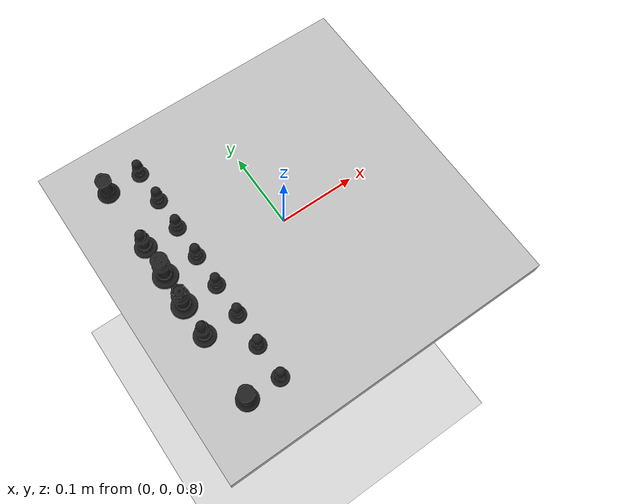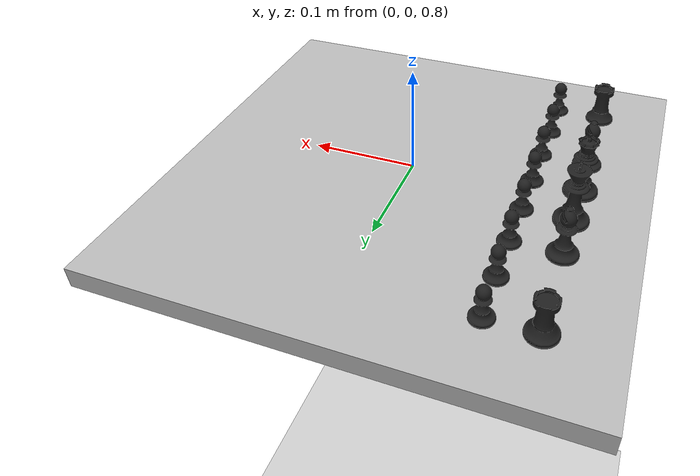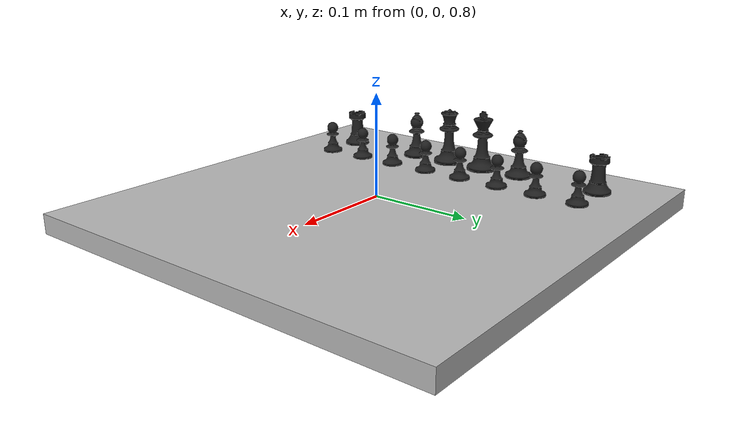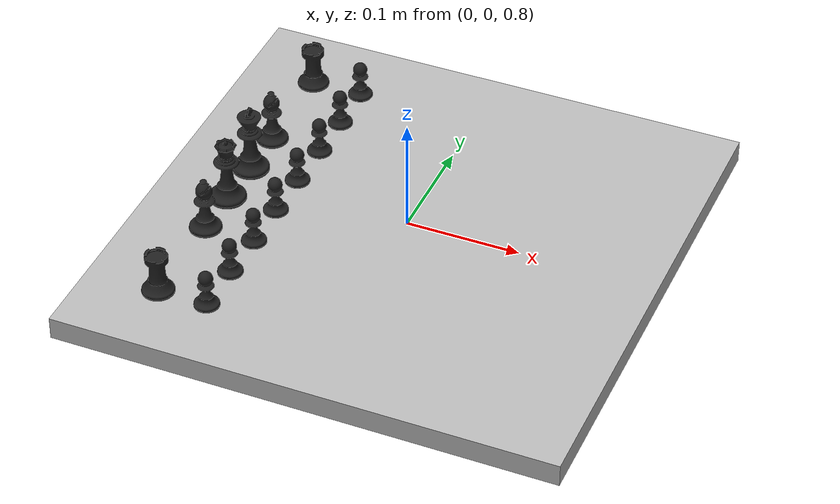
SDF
<sdf version="1.7">
 <world name="default">
  <model name="ground_plane">
   <static>1</static>
   <link name="link">
    <collision name="collision">
     <geometry><plane><normal>0 0 1</normal><size>100 100</size></plane></geometry>
     <surface>
      <contact><collide_bitmask>65535</collide_bitmask></contact>
      <friction><ode><mu>100</mu><mu2>50</mu2></ode></friction>
     </surface>
    </collision>
    <visual name="visual">
     <cast_shadows>0</cast_shadows>
     <geometry><plane><normal>0 0 1</normal><size>100 100</size></plane></geometry>
     <material>
      <script><uri>file://media/materials/scripts/gazebo.material</uri><name>Gazebo/Grey</name></script>
     </material>
    </visual>
   </link>
  </model>
  <model name="chess_board">
   <link name="link">
    <inertial>
     <mass>0.5</mass>
     <inertia>
      <ixx>0.166667</ixx>
      <ixy>0</ixy>
      <ixz>0</ixz>
      <iyy>0.166667</iyy>
      <iyz>0</iyz>
      <izz>0.166667</izz>
     </inertia>
    </inertial>
    <visual name="visual">
     <geometry><box><size>0.44 0.44 0.02</size></box></geometry>
     <material>
      <script>
       <name>ChessBoardMaterial</name>
       <uri>model://chess_board/materials/scripts</uri>
       <uri>model://chess_board/materials/textures</uri>
      </script>
     </material>
    </visual>
    <collision name="collision">
     <geometry><box><size>0.44 0.44 0.02</size></box></geometry>
     <surface>
      <friction>
       <ode><mu>1</mu><mu2>1</mu2><fdir1>0 0 0</fdir1><slip1>0</slip1><slip2>0</slip2></ode>
       <torsional>
        <coefficient>1</coefficient>
        <patch_radius>0</patch_radius>
        <surface_radius>0</surface_radius>
        <use_patch_radius>1</use_patch_radius>
        <ode><slip>0</slip></ode>
       </torsional>
      </friction>
      <bounce><restitution_coefficient>0</restitution_coefficient><threshold>1e+06</threshold></bounce>
      <contact>
       <collide_without_contact>0</collide_without_contact>
       <collide_without_contact_bitmask>1</collide_without_contact_bitmask>
       <collide_bitmask>1</collide_bitmask>
       <ode>
        <soft_cfm>0</soft_cfm>
        <soft_erp>0.2</soft_erp>
        <kp>1e+13</kp>
        <kd>1</kd>
        <max_vel>0.01</max_vel>
        <min_depth>0</min_depth>
       </ode>
       <bullet>
        <split_impulse>1</split_impulse>
        <split_impulse_penetration_threshold>-0.01</split_impulse_penetration_threshold>
        <soft_cfm>0</soft_cfm>
        <soft_erp>0.2</soft_erp>
        <kp>1e+13</kp>
        <kd>1</kd>
       </bullet>
      </contact>
     </surface>
    </collision>
   </link>
   <static>0</static>
   <pose>-0.000743 0.000917 0.785005 0 2.4e-05 -3e-05</pose>
  </model>
  <model name="pawn_black">
   <link name="link">
    <inertial>
     <mass>0.1</mass>
     <inertia>
      <ixx>0.166667</ixx>
      <ixy>0</ixy>
      <ixz>0</ixz>
      <iyy>0.166667</iyy>
      <iyz>0</iyz>
      <izz>0.166667</izz>
     </inertia>
    </inertial>
    <visual name="visual">
     <geometry><mesh><uri>model://pawn_black/pawn.stl</uri><scale>0.001 0.001 0.001</scale></mesh></geometry>
     <material>
      <lighting>1</lighting>
      <script><uri>file://media/materials/scripts/gazebo.material</uri><name>Gazebo/Black</name></script>
      <shader type="pixel"><normal_map>__default__</normal_map></shader>
      <ambient>0.3 0.3 0.3 1</ambient>
      <diffuse>0.3 0.3 0.3 1</diffuse>
      <specular>0.1 0.1 0.1 1</specular>
      <emissive>0 0 0 1</emissive>
     </material>
    </visual>
    <collision name="collision">
     <geometry><mesh><uri>model://pawn_black/pawn.stl</uri><scale>0.001 0.001 0.001</scale></mesh></geometry>
     <surface>
      <friction>
       <ode><mu>1</mu><mu2>1</mu2><fdir1>0 0 0</fdir1><slip1>0</slip1><slip2>0</slip2></ode>
       <torsional>
        <coefficient>1</coefficient>
        <patch_radius>0</patch_radius>
        <surface_radius>0</surface_radius>
        <use_patch_radius>1</use_patch_radius>
        <ode><slip>0</slip></ode>
       </torsional>
      </friction>
      <bounce><restitution_coefficient>0</restitution_coefficient><threshold>1e+06</threshold></bounce>
      <contact>
       <collide_without_contact>0</collide_without_contact>
       <collide_without_contact_bitmask>1</collide_without_contact_bitmask>
       <collide_bitmask>1</collide_bitmask>
       <ode>
        <soft_cfm>0</soft_cfm>
        <soft_erp>0.2</soft_erp>
        <kp>1e+13</kp>
        <kd>1</kd>
        <max_vel>0.01</max_vel>
        <min_depth>0</min_depth>
       </ode>
       <bullet>
        <split_impulse>1</split_impulse>
        <split_impulse_penetration_threshold>-0.01</split_impulse_penetration_threshold>
        <soft_cfm>0</soft_cfm>
        <soft_erp>0.2</soft_erp>
        <kp>1e+13</kp>
        <kd>1</kd>
       </bullet>
      </contact>
     </surface>
    </collision>
   </link>
   <static>0</static>
   <pose>-0.111188 -0.153614 0.795213 0.000217 0.0001 0.001653</pose>
  </model>
  <model name="pawn_black_0">
   <link name="link">
    <inertial>
     <mass>0.1</mass>
     <inertia>
      <ixx>0.166667</ixx>
      <ixy>0</ixy>
      <ixz>0</ixz>
      <iyy>0.166667</iyy>
      <iyz>0</iyz>
      <izz>0.166667</izz>
     </inertia>
    </inertial>
    <visual name="visual">
     <geometry><mesh><uri>model://pawn_black/pawn.stl</uri><scale>0.001 0.001 0.001</scale></mesh></geometry>
     <material>
      <lighting>1</lighting>
      <script><uri>file://media/materials/scripts/gazebo.material</uri><name>Gazebo/Black</name></script>
      <shader type="pixel"><normal_map>__default__</normal_map></shader>
      <ambient>0.3 0.3 0.3 1</ambient>
      <diffuse>0.3 0.3 0.3 1</diffuse>
      <specular>0.1 0.1 0.1 1</specular>
      <emissive>0 0 0 1</emissive>
     </material>
    </visual>
    <collision name="collision">
     <geometry><mesh><uri>model://pawn_black/pawn.stl</uri><scale>0.001 0.001 0.001</scale></mesh></geometry>
     <surface>
      <friction>
       <ode><mu>1</mu><mu2>1</mu2><fdir1>0 0 0</fdir1><slip1>0</slip1><slip2>0</slip2></ode>
       <torsional>
        <coefficient>1</coefficient>
        <patch_radius>0</patch_radius>
        <surface_radius>0</surface_radius>
        <use_patch_radius>1</use_patch_radius>
        <ode><slip>0</slip></ode>
       </torsional>
      </friction>
      <bounce><restitution_coefficient>0</restitution_coefficient><threshold>1e+06</threshold></bounce>
      <contact>
       <collide_without_contact>0</collide_without_contact>
       <collide_without_contact_bitmask>1</collide_without_contact_bitmask>
       <collide_bitmask>1</collide_bitmask>
       <ode>
        <soft_cfm>0</soft_cfm>
        <soft_erp>0.2</soft_erp>
        <kp>1e+13</kp>
        <kd>1</kd>
        <max_vel>0.01</max_vel>
        <min_depth>0</min_depth>
       </ode>
       <bullet>
        <split_impulse>1</split_impulse>
        <split_impulse_penetration_threshold>-0.01</split_impulse_penetration_threshold>
        <soft_cfm>0</soft_cfm>
        <soft_erp>0.2</soft_erp>
        <kp>1e+13</kp>
        <kd>1</kd>
       </bullet>
      </contact>
     </surface>
    </collision>
   </link>
   <static>0</static>
   <pose>-0.111529 -0.108762 0.795217 0.000481 0.000399 0.001416</pose>
  </model>
  <model name="pawn_black_1">
   <link name="link">
    <inertial>
     <mass>0.1</mass>
     <inertia>
      <ixx>0.166667</ixx>
      <ixy>0</ixy>
      <ixz>0</ixz>
      <iyy>0.166667</iyy>
      <iyz>0</iyz>
      <izz>0.166667</izz>
     </inertia>
    </inertial>
    <visual name="visual">
     <geometry><mesh><uri>model://pawn_black/pawn.stl</uri><scale>0.001 0.001 0.001</scale></mesh></geometry>
     <material>
      <lighting>1</lighting>
      <script><uri>file://media/materials/scripts/gazebo.material</uri><name>Gazebo/Black</name></script>
      <shader type="pixel"><normal_map>__default__</normal_map></shader>
      <ambient>0.3 0.3 0.3 1</ambient>
      <diffuse>0.3 0.3 0.3 1</diffuse>
      <specular>0.1 0.1 0.1 1</specular>
      <emissive>0 0 0 1</emissive>
     </material>
    </visual>
    <collision name="collision">
     <geometry><mesh><uri>model://pawn_black/pawn.stl</uri><scale>0.001 0.001 0.001</scale></mesh></geometry>
     <surface>
      <friction>
       <ode><mu>1</mu><mu2>1</mu2><fdir1>0 0 0</fdir1><slip1>0</slip1><slip2>0</slip2></ode>
       <torsional>
        <coefficient>1</coefficient>
        <patch_radius>0</patch_radius>
        <surface_radius>0</surface_radius>
        <use_patch_radius>1</use_patch_radius>
        <ode><slip>0</slip></ode>
       </torsional>
      </friction>
      <bounce><restitution_coefficient>0</restitution_coefficient><threshold>1e+06</threshold></bounce>
      <contact>
       <collide_without_contact>0</collide_without_contact>
       <collide_without_contact_bitmask>1</collide_without_contact_bitmask>
       <collide_bitmask>1</collide_bitmask>
       <ode>
        <soft_cfm>0</soft_cfm>
        <soft_erp>0.2</soft_erp>
        <kp>1e+13</kp>
        <kd>1</kd>
        <max_vel>0.01</max_vel>
        <min_depth>0</min_depth>
       </ode>
       <bullet>
        <split_impulse>1</split_impulse>
        <split_impulse_penetration_threshold>-0.01</split_impulse_penetration_threshold>
        <soft_cfm>0</soft_cfm>
        <soft_erp>0.2</soft_erp>
        <kp>1e+13</kp>
        <kd>1</kd>
       </bullet>
      </contact>
     </surface>
    </collision>
   </link>
   <static>0</static>
   <pose>-0.11055 -0.065455 0.795218 0.000372 -0.000639 0.000222</pose>
  </model>
  <model name="pawn_black_2">
   <link name="link">
    <inertial>
     <mass>0.1</mass>
     <inertia>
      <ixx>0.166667</ixx>
      <ixy>0</ixy>
      <ixz>0</ixz>
      <iyy>0.166667</iyy>
      <iyz>0</iyz>
      <izz>0.166667</izz>
     </inertia>
    </inertial>
    <visual name="visual">
     <geometry><mesh><uri>model://pawn_black/pawn.stl</uri><scale>0.001 0.001 0.001</scale></mesh></geometry>
     <material>
      <lighting>1</lighting>
      <script><uri>file://media/materials/scripts/gazebo.material</uri><name>Gazebo/Black</name></script>
      <shader type="pixel"><normal_map>__default__</normal_map></shader>
      <ambient>0.3 0.3 0.3 1</ambient>
      <diffuse>0.3 0.3 0.3 1</diffuse>
      <specular>0.1 0.1 0.1 1</specular>
      <emissive>0 0 0 1</emissive>
     </material>
    </visual>
    <collision name="collision">
     <geometry><mesh><uri>model://pawn_black/pawn.stl</uri><scale>0.001 0.001 0.001</scale></mesh></geometry>
     <surface>
      <friction>
       <ode><mu>1</mu><mu2>1</mu2><fdir1>0 0 0</fdir1><slip1>0</slip1><slip2>0</slip2></ode>
       <torsional>
        <coefficient>1</coefficient>
        <patch_radius>0</patch_radius>
        <surface_radius>0</surface_radius>
        <use_patch_radius>1</use_patch_radius>
        <ode><slip>0</slip></ode>
       </torsional>
      </friction>
      <bounce><restitution_coefficient>0</restitution_coefficient><threshold>1e+06</threshold></bounce>
      <contact>
       <collide_without_contact>0</collide_without_contact>
       <collide_without_contact_bitmask>1</collide_without_contact_bitmask>
       <collide_bitmask>1</collide_bitmask>
       <ode>
        <soft_cfm>0</soft_cfm>
        <soft_erp>0.2</soft_erp>
        <kp>1e+13</kp>
        <kd>1</kd>
        <max_vel>0.01</max_vel>
        <min_depth>0</min_depth>
       </ode>
       <bullet>
        <split_impulse>1</split_impulse>
        <split_impulse_penetration_threshold>-0.01</split_impulse_penetration_threshold>
        <soft_cfm>0</soft_cfm>
        <soft_erp>0.2</soft_erp>
        <kp>1e+13</kp>
        <kd>1</kd>
       </bullet>
      </contact>
     </surface>
    </collision>
   </link>
   <static>0</static>
   <pose>-0.111116 -0.021215 0.795209 0.000124 -9.6e-05 5.8e-05</pose>
  </model>
  <model name="pawn_black_3">
   <link name="link">
    <inertial>
     <mass>0.1</mass>
     <inertia>
      <ixx>0.166667</ixx>
      <ixy>0</ixy>
      <ixz>0</ixz>
      <iyy>0.166667</iyy>
      <iyz>0</iyz>
      <izz>0.166667</izz>
     </inertia>
    </inertial>
    <visual name="visual">
     <geometry><mesh><uri>model://pawn_black/pawn.stl</uri><scale>0.001 0.001 0.001</scale></mesh></geometry>
     <material>
      <lighting>1</lighting>
      <script><uri>file://media/materials/scripts/gazebo.material</uri><name>Gazebo/Black</name></script>
      <shader type="pixel"><normal_map>__default__</normal_map></shader>
      <ambient>0.3 0.3 0.3 1</ambient>
      <diffuse>0.3 0.3 0.3 1</diffuse>
      <specular>0.1 0.1 0.1 1</specular>
      <emissive>0 0 0 1</emissive>
     </material>
    </visual>
    <collision name="collision">
     <geometry><mesh><uri>model://pawn_black/pawn.stl</uri><scale>0.001 0.001 0.001</scale></mesh></geometry>
     <surface>
      <friction>
       <ode><mu>1</mu><mu2>1</mu2><fdir1>0 0 0</fdir1><slip1>0</slip1><slip2>0</slip2></ode>
       <torsional>
        <coefficient>1</coefficient>
        <patch_radius>0</patch_radius>
        <surface_radius>0</surface_radius>
        <use_patch_radius>1</use_patch_radius>
        <ode><slip>0</slip></ode>
       </torsional>
      </friction>
      <bounce><restitution_coefficient>0</restitution_coefficient><threshold>1e+06</threshold></bounce>
      <contact>
       <collide_without_contact>0</collide_without_contact>
       <collide_without_contact_bitmask>1</collide_without_contact_bitmask>
       <collide_bitmask>1</collide_bitmask>
       <ode>
        <soft_cfm>0</soft_cfm>
        <soft_erp>0.2</soft_erp>
        <kp>1e+13</kp>
        <kd>1</kd>
        <max_vel>0.01</max_vel>
        <min_depth>0</min_depth>
       </ode>
       <bullet>
        <split_impulse>1</split_impulse>
        <split_impulse_penetration_threshold>-0.01</split_impulse_penetration_threshold>
        <soft_cfm>0</soft_cfm>
        <soft_erp>0.2</soft_erp>
        <kp>1e+13</kp>
        <kd>1</kd>
       </bullet>
      </contact>
     </surface>
    </collision>
   </link>
   <static>0</static>
   <pose>-0.111094 0.022614 0.795213 0.000222 -7.5e-05 4.2e-05</pose>
  </model>
  <model name="pawn_black_4">
   <link name="link">
    <inertial>
     <mass>0.1</mass>
     <inertia>
      <ixx>0.166667</ixx>
      <ixy>0</ixy>
      <ixz>0</ixz>
      <iyy>0.166667</iyy>
      <iyz>0</iyz>
      <izz>0.166667</izz>
     </inertia>
    </inertial>
    <visual name="visual">
     <geometry><mesh><uri>model://pawn_black/pawn.stl</uri><scale>0.001 0.001 0.001</scale></mesh></geometry>
     <material>
      <lighting>1</lighting>
      <script><uri>file://media/materials/scripts/gazebo.material</uri><name>Gazebo/Black</name></script>
      <shader type="pixel"><normal_map>__default__</normal_map></shader>
      <ambient>0.3 0.3 0.3 1</ambient>
      <diffuse>0.3 0.3 0.3 1</diffuse>
      <specular>0.1 0.1 0.1 1</specular>
      <emissive>0 0 0 1</emissive>
     </material>
    </visual>
    <collision name="collision">
     <geometry><mesh><uri>model://pawn_black/pawn.stl</uri><scale>0.001 0.001 0.001</scale></mesh></geometry>
     <surface>
      <friction>
       <ode><mu>1</mu><mu2>1</mu2><fdir1>0 0 0</fdir1><slip1>0</slip1><slip2>0</slip2></ode>
       <torsional>
        <coefficient>1</coefficient>
        <patch_radius>0</patch_radius>
        <surface_radius>0</surface_radius>
        <use_patch_radius>1</use_patch_radius>
        <ode><slip>0</slip></ode>
       </torsional>
      </friction>
      <bounce><restitution_coefficient>0</restitution_coefficient><threshold>1e+06</threshold></bounce>
      <contact>
       <collide_without_contact>0</collide_without_contact>
       <collide_without_contact_bitmask>1</collide_without_contact_bitmask>
       <collide_bitmask>1</collide_bitmask>
       <ode>
        <soft_cfm>0</soft_cfm>
        <soft_erp>0.2</soft_erp>
        <kp>1e+13</kp>
        <kd>1</kd>
        <max_vel>0.01</max_vel>
        <min_depth>0</min_depth>
       </ode>
       <bullet>
        <split_impulse>1</split_impulse>
        <split_impulse_penetration_threshold>-0.01</split_impulse_penetration_threshold>
        <soft_cfm>0</soft_cfm>
        <soft_erp>0.2</soft_erp>
        <kp>1e+13</kp>
        <kd>1</kd>
       </bullet>
      </contact>
     </surface>
    </collision>
   </link>
   <static>0</static>
   <pose>-0.110611 0.067324 0.795213 -0.000183 -0.000187 -0.000241</pose>
  </model>
  <model name="pawn_black_5">
   <link name="link">
    <inertial>
     <mass>0.1</mass>
     <inertia>
      <ixx>0.166667</ixx>
      <ixy>0</ixy>
      <ixz>0</ixz>
      <iyy>0.166667</iyy>
      <iyz>0</iyz>
      <izz>0.166667</izz>
     </inertia>
    </inertial>
    <visual name="visual">
     <geometry><mesh><uri>model://pawn_black/pawn.stl</uri><scale>0.001 0.001 0.001</scale></mesh></geometry>
     <material>
      <lighting>1</lighting>
      <script><uri>file://media/materials/scripts/gazebo.material</uri><name>Gazebo/Black</name></script>
      <shader type="pixel"><normal_map>__default__</normal_map></shader>
      <ambient>0.3 0.3 0.3 1</ambient>
      <diffuse>0.3 0.3 0.3 1</diffuse>
      <specular>0.1 0.1 0.1 1</specular>
      <emissive>0 0 0 1</emissive>
     </material>
    </visual>
    <collision name="collision">
     <geometry><mesh><uri>model://pawn_black/pawn.stl</uri><scale>0.001 0.001 0.001</scale></mesh></geometry>
     <surface>
      <friction>
       <ode><mu>1</mu><mu2>1</mu2><fdir1>0 0 0</fdir1><slip1>0</slip1><slip2>0</slip2></ode>
       <torsional>
        <coefficient>1</coefficient>
        <patch_radius>0</patch_radius>
        <surface_radius>0</surface_radius>
        <use_patch_radius>1</use_patch_radius>
        <ode><slip>0</slip></ode>
       </torsional>
      </friction>
      <bounce><restitution_coefficient>0</restitution_coefficient><threshold>1e+06</threshold></bounce>
      <contact>
       <collide_without_contact>0</collide_without_contact>
       <collide_without_contact_bitmask>1</collide_without_contact_bitmask>
       <collide_bitmask>1</collide_bitmask>
       <ode>
        <soft_cfm>0</soft_cfm>
        <soft_erp>0.2</soft_erp>
        <kp>1e+13</kp>
        <kd>1</kd>
        <max_vel>0.01</max_vel>
        <min_depth>0</min_depth>
       </ode>
       <bullet>
        <split_impulse>1</split_impulse>
        <split_impulse_penetration_threshold>-0.01</split_impulse_penetration_threshold>
        <soft_cfm>0</soft_cfm>
        <soft_erp>0.2</soft_erp>
        <kp>1e+13</kp>
        <kd>1</kd>
       </bullet>
      </contact>
     </surface>
    </collision>
   </link>
   <static>0</static>
   <pose>-0.110617 0.111126 0.795209 -0.000274 -3.3e-05 -0.000156</pose>
  </model>
  <model name="pawn_black_6">
   <link name="link">
    <inertial>
     <mass>0.1</mass>
     <inertia>
      <ixx>0.166667</ixx>
      <ixy>0</ixy>
      <ixz>0</ixz>
      <iyy>0.166667</iyy>
      <iyz>0</iyz>
      <izz>0.166667</izz>
     </inertia>
    </inertial>
    <visual name="visual">
     <geometry><mesh><uri>model://pawn_black/pawn.stl</uri><scale>0.001 0.001 0.001</scale></mesh></geometry>
     <material>
      <lighting>1</lighting>
      <script><uri>file://media/materials/scripts/gazebo.material</uri><name>Gazebo/Black</name></script>
      <shader type="pixel"><normal_map>__default__</normal_map></shader>
      <ambient>0.3 0.3 0.3 1</ambient>
      <diffuse>0.3 0.3 0.3 1</diffuse>
      <specular>0.1 0.1 0.1 1</specular>
      <emissive>0 0 0 1</emissive>
     </material>
    </visual>
    <collision name="collision">
     <geometry><mesh><uri>model://pawn_black/pawn.stl</uri><scale>0.001 0.001 0.001</scale></mesh></geometry>
     <surface>
      <friction>
       <ode><mu>1</mu><mu2>1</mu2><fdir1>0 0 0</fdir1><slip1>0</slip1><slip2>0</slip2></ode>
       <torsional>
        <coefficient>1</coefficient>
        <patch_radius>0</patch_radius>
        <surface_radius>0</surface_radius>
        <use_patch_radius>1</use_patch_radius>
        <ode><slip>0</slip></ode>
       </torsional>
      </friction>
      <bounce><restitution_coefficient>0</restitution_coefficient><threshold>1e+06</threshold></bounce>
      <contact>
       <collide_without_contact>0</collide_without_contact>
       <collide_without_contact_bitmask>1</collide_without_contact_bitmask>
       <collide_bitmask>1</collide_bitmask>
       <ode>
        <soft_cfm>0</soft_cfm>
        <soft_erp>0.2</soft_erp>
        <kp>1e+13</kp>
        <kd>1</kd>
        <max_vel>0.01</max_vel>
        <min_depth>0</min_depth>
       </ode>
       <bullet>
        <split_impulse>1</split_impulse>
        <split_impulse_penetration_threshold>-0.01</split_impulse_penetration_threshold>
        <soft_cfm>0</soft_cfm>
        <soft_erp>0.2</soft_erp>
        <kp>1e+13</kp>
        <kd>1</kd>
       </bullet>
      </contact>
     </surface>
    </collision>
   </link>
   <static>0</static>
   <pose>-0.111055 0.15584 0.795216 -0.000552 0.000186 -0.000349</pose>
  </model>
  <model name="rook_black">
   <link name="link">
    <inertial>
     <mass>0.1</mass>
     <inertia>
      <ixx>0.166667</ixx>
      <ixy>0</ixy>
      <ixz>0</ixz>
      <iyy>0.166667</iyy>
      <iyz>0</iyz>
      <izz>0.166667</izz>
     </inertia>
    </inertial>
    <visual name="visual">
     <geometry><mesh><uri>model://rook_black/rook.stl</uri><scale>0.001 0.001 0.001</scale></mesh></geometry>
     <material>
      <lighting>1</lighting>
      <script><uri>file://media/materials/scripts/gazebo.material</uri><name>Gazebo/Black</name></script>
      <shader type="pixel"><normal_map>__default__</normal_map></shader>
      <ambient>0.3 0.3 0.3 1</ambient>
      <diffuse>0.3 0.3 0.3 1</diffuse>
      <specular>0.1 0.1 0.1 1</specular>
      <emissive>0 0 0 1</emissive>
     </material>
    </visual>
    <collision name="collision">
     <geometry><mesh><uri>model://rook_black/rook.stl</uri><scale>0.001 0.001 0.001</scale></mesh></geometry>
     <surface>
      <friction>
       <ode><mu>1</mu><mu2>1</mu2><fdir1>0 0 0</fdir1><slip1>0</slip1><slip2>0</slip2></ode>
       <torsional>
        <coefficient>1</coefficient>
        <patch_radius>0</patch_radius>
        <surface_radius>0</surface_radius>
        <use_patch_radius>1</use_patch_radius>
        <ode><slip>0</slip></ode>
       </torsional>
      </friction>
      <bounce><restitution_coefficient>0</restitution_coefficient><threshold>1e+06</threshold></bounce>
      <contact>
       <collide_without_contact>0</collide_without_contact>
       <collide_without_contact_bitmask>1</collide_without_contact_bitmask>
       <collide_bitmask>1</collide_bitmask>
       <ode>
        <soft_cfm>0</soft_cfm>
        <soft_erp>0.2</soft_erp>
        <kp>1e+13</kp>
        <kd>1</kd>
        <max_vel>0.01</max_vel>
        <min_depth>0</min_depth>
       </ode>
       <bullet>
        <split_impulse>1</split_impulse>
        <split_impulse_penetration_threshold>-0.01</split_impulse_penetration_threshold>
        <soft_cfm>0</soft_cfm>
        <soft_erp>0.2</soft_erp>
        <kp>1e+13</kp>
        <kd>1</kd>
       </bullet>
      </contact>
     </surface>
    </collision>
   </link>
   <static>0</static>
   <pose>-0.155325 -0.15305 0.795165 5.4e-05 -0.000142 -0.000157</pose>
  </model>
  <model name="rook_black_0">
   <link name="link">
    <inertial>
     <mass>0.1</mass>
     <inertia>
      <ixx>0.166667</ixx>
      <ixy>0</ixy>
      <ixz>0</ixz>
      <iyy>0.166667</iyy>
      <iyz>0</iyz>
      <izz>0.166667</izz>
     </inertia>
    </inertial>
    <visual name="visual">
     <geometry><mesh><uri>model://rook_black/rook.stl</uri><scale>0.001 0.001 0.001</scale></mesh></geometry>
     <material>
      <lighting>1</lighting>
      <script><uri>file://media/materials/scripts/gazebo.material</uri><name>Gazebo/Black</name></script>
      <shader type="pixel"><normal_map>__default__</normal_map></shader>
      <ambient>0.3 0.3 0.3 1</ambient>
      <diffuse>0.3 0.3 0.3 1</diffuse>
      <specular>0.1 0.1 0.1 1</specular>
      <emissive>0 0 0 1</emissive>
     </material>
    </visual>
    <collision name="collision">
     <geometry><mesh><uri>model://rook_black/rook.stl</uri><scale>0.001 0.001 0.001</scale></mesh></geometry>
     <surface>
      <friction>
       <ode><mu>1</mu><mu2>1</mu2><fdir1>0 0 0</fdir1><slip1>0</slip1><slip2>0</slip2></ode>
       <torsional>
        <coefficient>1</coefficient>
        <patch_radius>0</patch_radius>
        <surface_radius>0</surface_radius>
        <use_patch_radius>1</use_patch_radius>
        <ode><slip>0</slip></ode>
       </torsional>
      </friction>
      <bounce><restitution_coefficient>0</restitution_coefficient><threshold>1e+06</threshold></bounce>
      <contact>
       <collide_without_contact>0</collide_without_contact>
       <collide_without_contact_bitmask>1</collide_without_contact_bitmask>
       <collide_bitmask>1</collide_bitmask>
       <ode>
        <soft_cfm>0</soft_cfm>
        <soft_erp>0.2</soft_erp>
        <kp>1e+13</kp>
        <kd>1</kd>
        <max_vel>0.01</max_vel>
        <min_depth>0</min_depth>
       </ode>
       <bullet>
        <split_impulse>1</split_impulse>
        <split_impulse_penetration_threshold>-0.01</split_impulse_penetration_threshold>
        <soft_cfm>0</soft_cfm>
        <soft_erp>0.2</soft_erp>
        <kp>1e+13</kp>
        <kd>1</kd>
       </bullet>
      </contact>
     </surface>
    </collision>
   </link>
   <static>0</static>
   <pose>-0.156338 0.155444 0.795176 5.4e-05 -1.4e-05 -0.000133</pose>
  </model>
  <model name="bishop_black">
   <link name="link">
    <inertial>
     <mass>0.1</mass>
     <inertia>
      <ixx>0.166667</ixx>
      <ixy>0</ixy>
      <ixz>0</ixz>
      <iyy>0.166667</iyy>
      <iyz>0</iyz>
      <izz>0.166667</izz>
     </inertia>
    </inertial>
    <visual name="visual">
     <geometry><mesh><uri>model://bishop_black/bishop.stl</uri><scale>0.001 0.001 0.001</scale></mesh></geometry>
     <material>
      <lighting>1</lighting>
      <script><uri>file://media/materials/scripts/gazebo.material</uri><name>Gazebo/Black</name></script>
      <shader type="pixel"><normal_map>__default__</normal_map></shader>
      <ambient>0.3 0.3 0.3 1</ambient>
      <diffuse>0.3 0.3 0.3 1</diffuse>
      <specular>0.1 0.1 0.1 1</specular>
      <emissive>0 0 0 1</emissive>
     </material>
    </visual>
    <collision name="collision">
     <geometry><mesh><uri>model://bishop_black/bishop.stl</uri><scale>0.001 0.001 0.001</scale></mesh></geometry>
     <surface>
      <friction>
       <ode><mu>1</mu><mu2>1</mu2><fdir1>0 0 0</fdir1><slip1>0</slip1><slip2>0</slip2></ode>
       <torsional>
        <coefficient>1</coefficient>
        <patch_radius>0</patch_radius>
        <surface_radius>0</surface_radius>
        <use_patch_radius>1</use_patch_radius>
        <ode><slip>0</slip></ode>
       </torsional>
      </friction>
      <bounce><restitution_coefficient>0</restitution_coefficient><threshold>1e+06</threshold></bounce>
      <contact>
       <collide_without_contact>0</collide_without_contact>
       <collide_without_contact_bitmask>1</collide_without_contact_bitmask>
       <collide_bitmask>1</collide_bitmask>
       <ode>
        <soft_cfm>0</soft_cfm>
        <soft_erp>0.2</soft_erp>
        <kp>1e+13</kp>
        <kd>1</kd>
        <max_vel>0.01</max_vel>
        <min_depth>0</min_depth>
       </ode>
       <bullet>
        <split_impulse>1</split_impulse>
        <split_impulse_penetration_threshold>-0.01</split_impulse_penetration_threshold>
        <soft_cfm>0</soft_cfm>
        <soft_erp>0.2</soft_erp>
        <kp>1e+13</kp>
        <kd>1</kd>
       </bullet>
      </contact>
     </surface>
    </collision>
   </link>
   <static>0</static>
   <pose>-0.155381 -0.065007 0.795079 0.000824 -0.000292 3.14131</pose>
  </model>
  <model name="bishop_black_0">
   <link name="link">
    <inertial>
     <mass>0.1</mass>
     <inertia>
      <ixx>0.166667</ixx>
      <ixy>0</ixy>
      <ixz>0</ixz>
      <iyy>0.166667</iyy>
      <iyz>0</iyz>
      <izz>0.166667</izz>
     </inertia>
    </inertial>
    <visual name="visual">
     <geometry><mesh><uri>model://bishop_black/bishop.stl</uri><scale>0.001 0.001 0.001</scale></mesh></geometry>
     <material>
      <lighting>1</lighting>
      <script><uri>file://media/materials/scripts/gazebo.material</uri><name>Gazebo/Black</name></script>
      <shader type="pixel"><normal_map>__default__</normal_map></shader>
      <ambient>0.3 0.3 0.3 1</ambient>
      <diffuse>0.3 0.3 0.3 1</diffuse>
      <specular>0.1 0.1 0.1 1</specular>
      <emissive>0 0 0 1</emissive>
     </material>
    </visual>
    <collision name="collision">
     <geometry><mesh><uri>model://bishop_black/bishop.stl</uri><scale>0.001 0.001 0.001</scale></mesh></geometry>
     <surface>
      <friction>
       <ode><mu>1</mu><mu2>1</mu2><fdir1>0 0 0</fdir1><slip1>0</slip1><slip2>0</slip2></ode>
       <torsional>
        <coefficient>1</coefficient>
        <patch_radius>0</patch_radius>
        <surface_radius>0</surface_radius>
        <use_patch_radius>1</use_patch_radius>
        <ode><slip>0</slip></ode>
       </torsional>
      </friction>
      <bounce><restitution_coefficient>0</restitution_coefficient><threshold>1e+06</threshold></bounce>
      <contact>
       <collide_without_contact>0</collide_without_contact>
       <collide_without_contact_bitmask>1</collide_without_contact_bitmask>
       <collide_bitmask>1</collide_bitmask>
       <ode>
        <soft_cfm>0</soft_cfm>
        <soft_erp>0.2</soft_erp>
        <kp>1e+13</kp>
        <kd>1</kd>
        <max_vel>0.01</max_vel>
        <min_depth>0</min_depth>
       </ode>
       <bullet>
        <split_impulse>1</split_impulse>
        <split_impulse_penetration_threshold>-0.01</split_impulse_penetration_threshold>
        <soft_cfm>0</soft_cfm>
        <soft_erp>0.2</soft_erp>
        <kp>1e+13</kp>
        <kd>1</kd>
       </bullet>
      </contact>
     </surface>
    </collision>
   </link>
   <static>0</static>
   <pose>-0.15546 0.067286 0.795073 -0.000374 -0.000201 3.1414</pose>
  </model>
  <model name="queen_black">
   <link name="link">
    <inertial>
     <mass>0.1</mass>
     <inertia>
      <ixx>0.166667</ixx>
      <ixy>0</ixy>
      <ixz>0</ixz>
      <iyy>0.166667</iyy>
      <iyz>0</iyz>
      <izz>0.166667</izz>
     </inertia>
    </inertial>
    <visual name="visual">
     <geometry><mesh><uri>model://queen_black/queen.stl</uri><scale>0.001 0.001 0.001</scale></mesh></geometry>
     <material>
      <lighting>1</lighting>
      <script><uri>file://media/materials/scripts/gazebo.material</uri><name>Gazebo/Black</name></script>
      <shader type="pixel"><normal_map>__default__</normal_map></shader>
      <ambient>0.3 0.3 0.3 1</ambient>
      <diffuse>0.3 0.3 0.3 1</diffuse>
      <specular>0.1 0.1 0.1 1</specular>
      <emissive>0 0 0 1</emissive>
     </material>
    </visual>
    <collision name="collision">
     <geometry><mesh><uri>model://queen_black/queen.stl</uri><scale>0.001 0.001 0.001</scale></mesh></geometry>
     <surface>
      <friction>
       <ode><mu>1</mu><mu2>1</mu2><fdir1>0 0 0</fdir1><slip1>0</slip1><slip2>0</slip2></ode>
       <torsional>
        <coefficient>1</coefficient>
        <patch_radius>0</patch_radius>
        <surface_radius>0</surface_radius>
        <use_patch_radius>1</use_patch_radius>
        <ode><slip>0</slip></ode>
       </torsional>
      </friction>
      <bounce><restitution_coefficient>0</restitution_coefficient><threshold>1e+06</threshold></bounce>
      <contact>
       <collide_without_contact>0</collide_without_contact>
       <collide_without_contact_bitmask>1</collide_without_contact_bitmask>
       <collide_bitmask>1</collide_bitmask>
       <ode>
        <soft_cfm>0</soft_cfm>
        <soft_erp>0.2</soft_erp>
        <kp>1e+13</kp>
        <kd>1</kd>
        <max_vel>0.01</max_vel>
        <min_depth>0</min_depth>
       </ode>
       <bullet>
        <split_impulse>1</split_impulse>
        <split_impulse_penetration_threshold>-0.01</split_impulse_penetration_threshold>
        <soft_cfm>0</soft_cfm>
        <soft_erp>0.2</soft_erp>
        <kp>1e+13</kp>
        <kd>1</kd>
       </bullet>
      </contact>
     </surface>
    </collision>
   </link>
   <static>0</static>
   <pose>-0.1559 -0.021218 0.794932 -0.000109 -2e-06 -0.000129</pose>
  </model>
  <model name="king_black">
   <link name="link">
    <inertial>
     <mass>0.1</mass>
     <inertia>
      <ixx>0.166667</ixx>
      <ixy>0</ixy>
      <ixz>0</ixz>
      <iyy>0.166667</iyy>
      <iyz>0</iyz>
      <izz>0.166667</izz>
     </inertia>
    </inertial>
    <visual name="visual">
     <geometry><mesh><uri>model://king_black/king.stl</uri><scale>0.001 0.001 0.001</scale></mesh></geometry>
     <material>
      <lighting>1</lighting>
      <script><uri>file://media/materials/scripts/gazebo.material</uri><name>Gazebo/Black</name></script>
      <shader type="pixel"><normal_map>__default__</normal_map></shader>
      <ambient>0.3 0.3 0.3 1</ambient>
      <diffuse>0.3 0.3 0.3 1</diffuse>
      <specular>0.1 0.1 0.1 1</specular>
      <emissive>0 0 0 1</emissive>
     </material>
    </visual>
    <collision name="collision">
     <geometry><mesh><uri>model://king_black/king.stl</uri><scale>0.001 0.001 0.001</scale></mesh></geometry>
     <surface>
      <friction>
       <ode><mu>1</mu><mu2>1</mu2><fdir1>0 0 0</fdir1><slip1>0</slip1><slip2>0</slip2></ode>
       <torsional>
        <coefficient>1</coefficient>
        <patch_radius>0</patch_radius>
        <surface_radius>0</surface_radius>
        <use_patch_radius>1</use_patch_radius>
        <ode><slip>0</slip></ode>
       </torsional>
      </friction>
      <bounce><restitution_coefficient>0</restitution_coefficient><threshold>1e+06</threshold></bounce>
      <contact>
       <collide_without_contact>0</collide_without_contact>
       <collide_without_contact_bitmask>1</collide_without_contact_bitmask>
       <collide_bitmask>1</collide_bitmask>
       <ode>
        <soft_cfm>0</soft_cfm>
        <soft_erp>0.2</soft_erp>
        <kp>1e+13</kp>
        <kd>1</kd>
        <max_vel>0.01</max_vel>
        <min_depth>0</min_depth>
       </ode>
       <bullet>
        <split_impulse>1</split_impulse>
        <split_impulse_penetration_threshold>-0.01</split_impulse_penetration_threshold>
        <soft_cfm>0</soft_cfm>
        <soft_erp>0.2</soft_erp>
        <kp>1e+13</kp>
        <kd>1</kd>
       </bullet>
      </contact>
     </surface>
    </collision>
   </link>
   <static>0</static>
   <pose>-0.154904 0.022591 0.794703 -2e-06 -4.6e-05 1.57075</pose>
  </model>
 </world>
</sdf>
